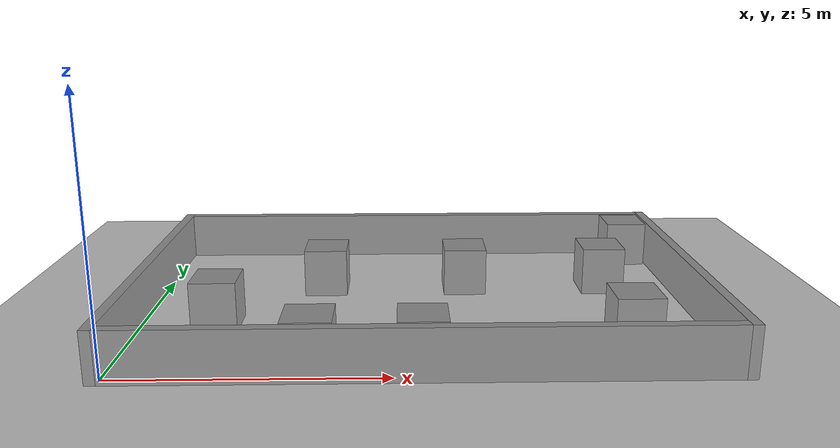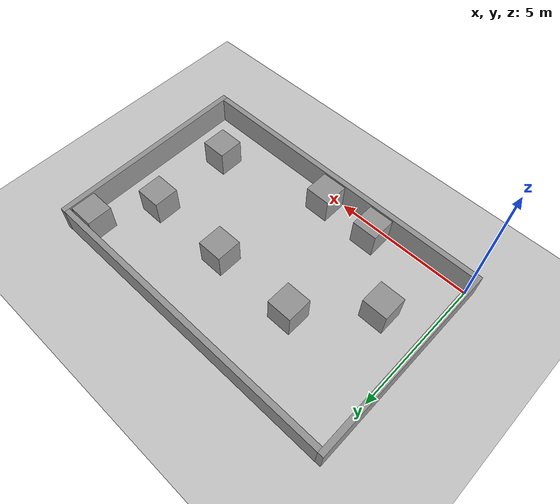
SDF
<sdf version="1.4">
 <world name="default">
  <light name="sun" type="directional">
   <pose>0 0 10 0 -0 0</pose>
   <diffuse>0.8 0.8 0.8 1</diffuse>
   <specular>0.2 0.2 0.2 1</specular>
   <attenuation>
    <range>1000</range>
    <constant>0.9</constant>
    <linear>0.01</linear>
    <quadratic>0.001</quadratic>
   </attenuation>
   <direction>-0.5 0.1 -0.9</direction>
  </light>
  <model name="ground_plane">
   <static>1</static>
   <link name="link">
    <collision name="collision">
     <geometry><plane><normal>0 0 1</normal><size>100 100</size></plane></geometry>
     <surface><friction><ode><mu>100</mu><mu2>50</mu2></ode></friction></surface>
    </collision>
    <visual name="visual">
     <cast_shadows>0</cast_shadows>
     <geometry><plane><normal>0 0 1</normal><size>100 100</size></plane></geometry>
     <material>
      <script><uri>file://media/materials/scripts/gazebo.material</uri><name>Gazebo/Grey</name></script>
     </material>
    </visual>
    <velocity_decay><linear>0</linear><angular>0</angular></velocity_decay>
   </link>
  </model>
  <physics type="ode">
   <max_step_size>0.001</max_step_size>
   <real_time_factor>1</real_time_factor>
   <real_time_update_rate>1000</real_time_update_rate>
   <gravity>0 0 -9.8</gravity>
  </physics>
  <scene><ambient>0.4 0.4 0.4 1</ambient><background>0.7 0.7 0.7 1</background><shadows>1</shadows></scene>
  <spherical_coordinates>
   <surface_model>EARTH_WGS84</surface_model>
   <latitude_deg>0</latitude_deg>
   <longitude_deg>0</longitude_deg>
   <elevation>0</elevation>
   <heading_deg>0</heading_deg>
  </spherical_coordinates>
  <model name="B1">
   <pose>1.5 2.5 0.5 0 -0 0</pose>
   <link name="link">
    <inertial>
     <mass>1</mass>
     <inertia><ixx>1</ixx><ixy>0</ixy><ixz>0</ixz><iyy>1</iyy><iyz>0</iyz><izz>1</izz></inertia>
    </inertial>
    <collision name="collision"><geometry><box><size>0.90 0.90 1.0</size></box></geometry></collision>
    <visual name="visual">
     <geometry><box><size>0.90 0.90 1.0</size></box></geometry>
     <material>
      <script><uri>file://media/materials/scripts/gazebo.material</uri><name>Gazebo/Grey</name></script>
     </material>
    </visual>
    <velocity_decay><linear>0</linear><angular>0</angular></velocity_decay>
   </link>
   <static>1</static>
  </model>
  <model name="B2">
   <pose>3.5 4.5 0.5 0 -0 0</pose>
   <link name="link">
    <inertial>
     <mass>1</mass>
     <inertia><ixx>1</ixx><ixy>0</ixy><ixz>0</ixz><iyy>1</iyy><iyz>0</iyz><izz>1</izz></inertia>
    </inertial>
    <collision name="collision"><geometry><box><size>0.90 0.90 1.0</size></box></geometry></collision>
    <visual name="visual">
     <geometry><box><size>0.90 0.90 1.0</size></box></geometry>
     <material>
      <script><uri>file://media/materials/scripts/gazebo.material</uri><name>Gazebo/Grey</name></script>
     </material>
    </visual>
    <velocity_decay><linear>0</linear><angular>0</angular></velocity_decay>
   </link>
   <static>1</static>
  </model>
  <model name="B3">
   <pose>3.5 0.5 0.5 0 -0 0</pose>
   <link name="link">
    <inertial>
     <mass>1</mass>
     <inertia><ixx>1</ixx><ixy>0</ixy><ixz>0</ixz><iyy>1</iyy><iyz>0</iyz><izz>1</izz></inertia>
    </inertial>
    <collision name="collision"><geometry><box><size>0.90 0.90 1.0</size></box></geometry></collision>
    <visual name="visual">
     <geometry><box><size>0.90 0.90 1.0</size></box></geometry>
     <material>
      <script><uri>file://media/materials/scripts/gazebo.material</uri><name>Gazebo/Grey</name></script>
     </material>
    </visual>
    <velocity_decay><linear>0</linear><angular>0</angular></velocity_decay>
   </link>
   <static>1</static>
  </model>
  <model name="B4">
   <pose>5.5 0.5 0.5 0 -0 0</pose>
   <link name="link">
    <inertial>
     <mass>1</mass>
     <inertia><ixx>1</ixx><ixy>0</ixy><ixz>0</ixz><iyy>1</iyy><iyz>0</iyz><izz>1</izz></inertia>
    </inertial>
    <collision name="collision"><geometry><box><size>0.90 0.90 1.0</size></box></geometry></collision>
    <visual name="visual">
     <geometry><box><size>0.90 0.90 1.0</size></box></geometry>
     <material>
      <script><uri>file://media/materials/scripts/gazebo.material</uri><name>Gazebo/Grey</name></script>
     </material>
    </visual>
    <velocity_decay><linear>0</linear><angular>0</angular></velocity_decay>
   </link>
   <static>1</static>
  </model>
  <model name="B5">
   <pose>6.5 4.5 0.5 0 -0 0</pose>
   <link name="link">
    <inertial>
     <mass>1</mass>
     <inertia><ixx>1</ixx><ixy>0</ixy><ixz>0</ixz><iyy>1</iyy><iyz>0</iyz><izz>1</izz></inertia>
    </inertial>
    <collision name="collision"><geometry><box><size>0.90 0.90 1.0</size></box></geometry></collision>
    <visual name="visual">
     <geometry><box><size>0.90 0.90 1.0</size></box></geometry>
     <material>
      <script><uri>file://media/materials/scripts/gazebo.material</uri><name>Gazebo/Grey</name></script>
     </material>
    </visual>
    <velocity_decay><linear>0</linear><angular>0</angular></velocity_decay>
   </link>
   <static>1</static>
  </model>
  <model name="B6">
   <pose>9.5 4.5 0.5 0 -0 0</pose>
   <link name="link">
    <inertial>
     <mass>1</mass>
     <inertia><ixx>1</ixx><ixy>0</ixy><ixz>0</ixz><iyy>1</iyy><iyz>0</iyz><izz>1</izz></inertia>
    </inertial>
    <collision name="collision"><geometry><box><size>0.90 0.90 1.0</size></box></geometry></collision>
    <visual name="visual">
     <geometry><box><size>0.90 0.90 1.0</size></box></geometry>
     <material>
      <script><uri>file://media/materials/scripts/gazebo.material</uri><name>Gazebo/Grey</name></script>
     </material>
    </visual>
    <velocity_decay><linear>0</linear><angular>0</angular></velocity_decay>
   </link>
   <static>1</static>
  </model>
  <model name="B7">
   <pose>9.5 1.5 0.5 0 -0 0</pose>
   <link name="link">
    <inertial>
     <mass>1</mass>
     <inertia><ixx>1</ixx><ixy>0</ixy><ixz>0</ixz><iyy>1</iyy><iyz>0</iyz><izz>1</izz></inertia>
    </inertial>
    <collision name="collision"><geometry><box><size>0.90 0.90 1.0</size></box></geometry></collision>
    <visual name="visual">
     <geometry><box><size>0.90 0.90 1.0</size></box></geometry>
     <material>
      <script><uri>file://media/materials/scripts/gazebo.material</uri><name>Gazebo/Grey</name></script>
     </material>
    </visual>
    <velocity_decay><linear>0</linear><angular>0</angular></velocity_decay>
   </link>
   <static>1</static>
  </model>
  <model name="B8">
   <pose>10.5 6.5 0.5 0 -0 0</pose>
   <link name="link">
    <inertial>
     <mass>1</mass>
     <inertia><ixx>1</ixx><ixy>0</ixy><ixz>0</ixz><iyy>1</iyy><iyz>0</iyz><izz>1</izz></inertia>
    </inertial>
    <collision name="collision"><geometry><box><size>0.90 0.90 1.0</size></box></geometry></collision>
    <visual name="visual">
     <geometry><box><size>0.90 0.90 1.0</size></box></geometry>
     <material>
      <script><uri>file://media/materials/scripts/gazebo.material</uri><name>Gazebo/Grey</name></script>
     </material>
    </visual>
    <velocity_decay><linear>0</linear><angular>0</angular></velocity_decay>
   </link>
   <static>1</static>
  </model>
  <model name="W1">
   <pose>5.5 -0.1 0.5 0 0 0</pose>
   <link name="link">
    <inertial>
     <mass>1</mass>
     <inertia><ixx>1</ixx><ixy>0</ixy><ixz>0</ixz><iyy>1</iyy><iyz>0</iyz><izz>1</izz></inertia>
    </inertial>
    <collision name="collision"><geometry><box><size>11.0 0.2 1.0</size></box></geometry></collision>
    <visual name="visual">
     <geometry><box><size>11.0 0.2 1.0</size></box></geometry>
     <material>
      <script><uri>file://media/materials/scripts/gazebo.material</uri><name>Gazebo/Grey</name></script>
     </material>
    </visual>
    <velocity_decay><linear>0</linear><angular>0</angular></velocity_decay>
   </link>
   <static>1</static>
  </model>
  <model name="W2">
   <pose>-0.1 3.5 0.5 0 0 0</pose>
   <link name="link">
    <inertial>
     <mass>1</mass>
     <inertia><ixx>1</ixx><ixy>0</ixy><ixz>0</ixz><iyy>1</iyy><iyz>0</iyz><izz>1</izz></inertia>
    </inertial>
    <collision name="collision"><geometry><box><size>0.2 7.4 1.0</size></box></geometry></collision>
    <visual name="visual">
     <geometry><box><size>0.2 7.4 1.0</size></box></geometry>
     <material>
      <script><uri>file://media/materials/scripts/gazebo.material</uri><name>Gazebo/Grey</name></script>
     </material>
    </visual>
    <velocity_decay><linear>0</linear><angular>0</angular></velocity_decay>
   </link>
   <static>1</static>
  </model>
  <model name="W3">
   <pose>5.5 7.1 0.5 0 0 0</pose>
   <link name="link">
    <inertial>
     <mass>1</mass>
     <inertia><ixx>1</ixx><ixy>0</ixy><ixz>0</ixz><iyy>1</iyy><iyz>0</iyz><izz>1</izz></inertia>
    </inertial>
    <collision name="collision"><geometry><box><size>11.0 0.2 1.0</size></box></geometry></collision>
    <visual name="visual">
     <geometry><box><size>11.0 0.2 1.0</size></box></geometry>
     <material>
      <script><uri>file://media/materials/scripts/gazebo.material</uri><name>Gazebo/Grey</name></script>
     </material>
    </visual>
    <velocity_decay><linear>0</linear><angular>0</angular></velocity_decay>
   </link>
   <static>1</static>
  </model>
  <model name="W4">
   <pose>11.1 3.5 0.5 0 0 0</pose>
   <link name="link">
    <inertial>
     <mass>1</mass>
     <inertia><ixx>1</ixx><ixy>0</ixy><ixz>0</ixz><iyy>1</iyy><iyz>0</iyz><izz>1</izz></inertia>
    </inertial>
    <collision name="collision"><geometry><box><size>0.2 7.4 1.0</size></box></geometry></collision>
    <visual name="visual">
     <geometry><box><size>0.2 7.4 1.0</size></box></geometry>
     <material>
      <script><uri>file://media/materials/scripts/gazebo.material</uri><name>Gazebo/Grey</name></script>
     </material>
    </visual>
    <velocity_decay><linear>0</linear><angular>0</angular></velocity_decay>
   </link>
   <static>1</static>
  </model>
 </world>
</sdf>
